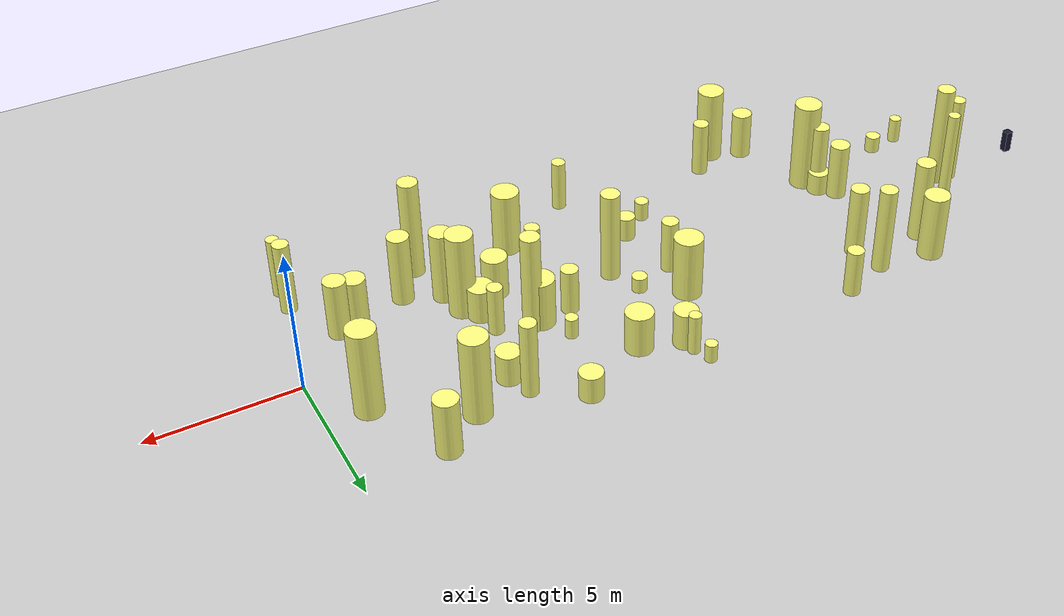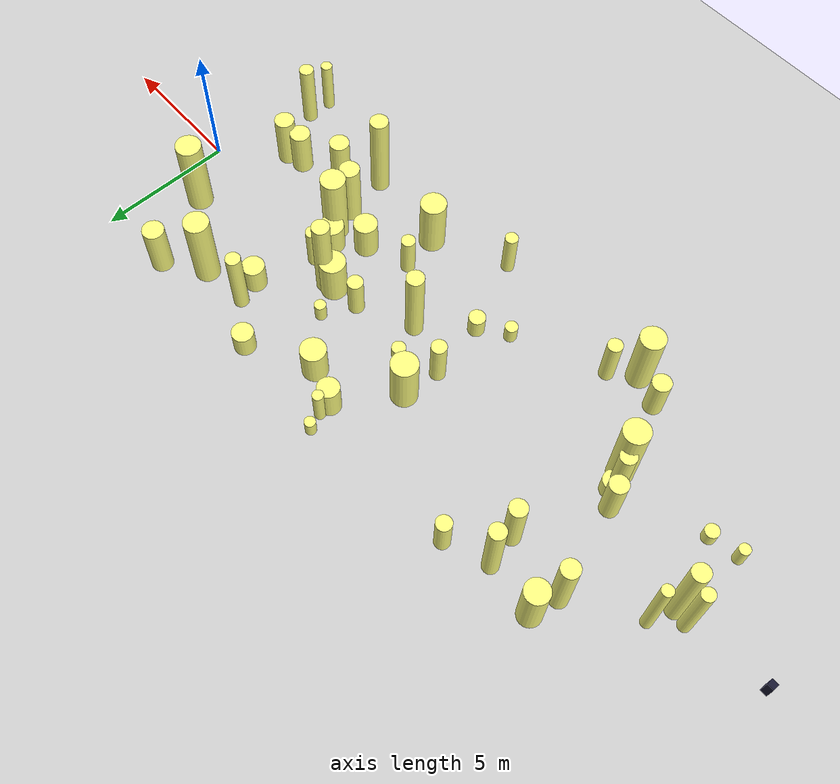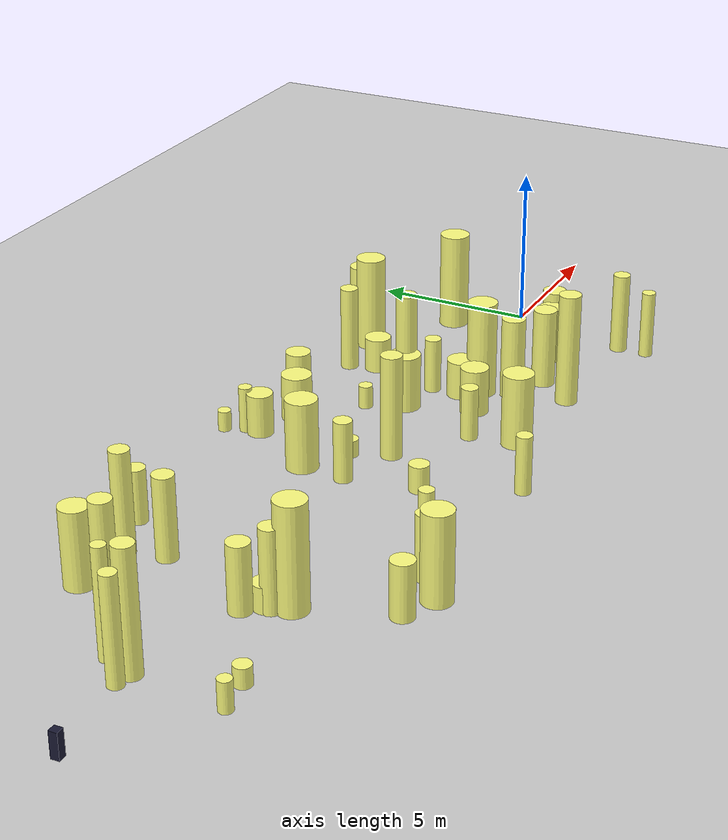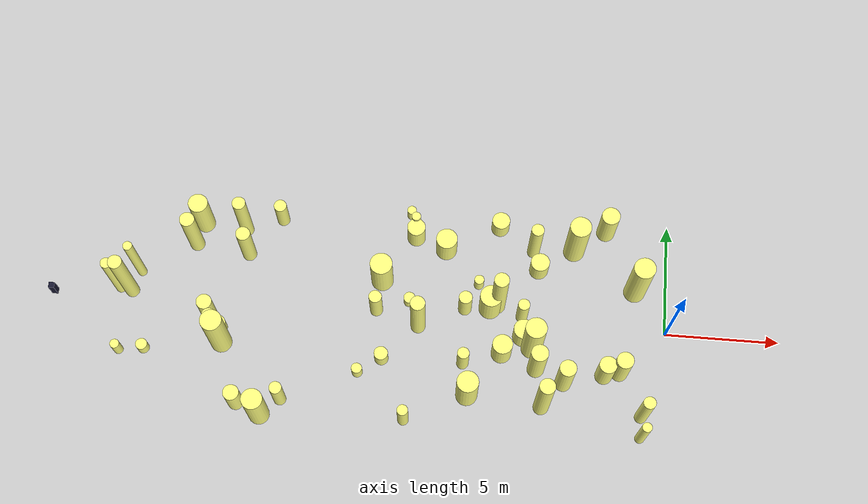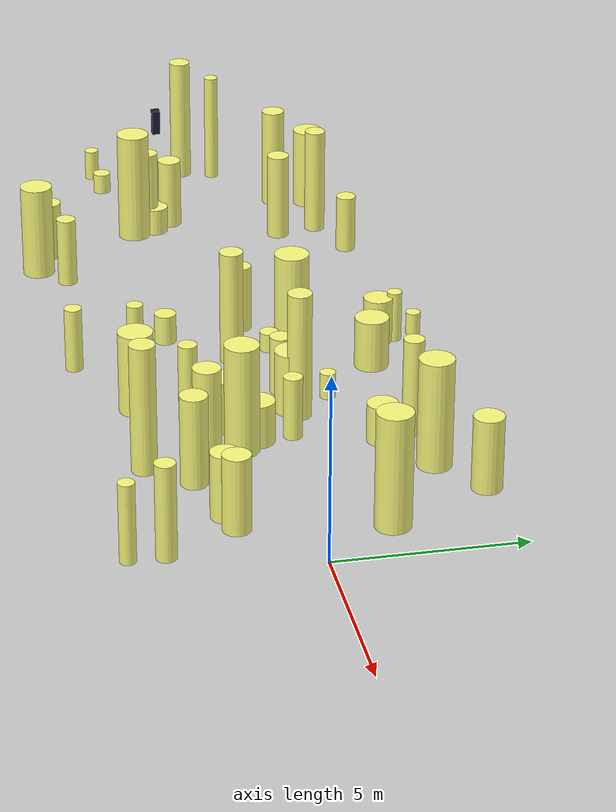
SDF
<sdf version="1.4">
 <world name="default">
  <include><uri>model://ground_plane</uri></include>
  <include><uri>model://sun</uri></include>
  <model name="forest">
   <static>true</static>
   <link name="cylinder0">
    <pose>-9.830720803390115 3.235554947666131 0.7182927848972427 0 0 0</pose>
    <visual name="visual">
     <geometry>
      <cylinder><radius>0.46576942682826955</radius><length>1.4365855697944854</length></cylinder>
     </geometry>
     <material>
      <ambient>0.6 0.6 0.6 1</ambient>
      <diffuse>1 1 0.5 1</diffuse>
      <specular>0 0 0</specular>
      <emissive>0 0 0 1</emissive>
     </material>
    </visual>
    <collision name="collision">
     <geometry>
      <cylinder><radius>0.46576942682826955</radius><length>1.4365855697944854</length></cylinder>
     </geometry>
     <max_contacts>0</max_contacts>
    </collision>
   </link>
   <link name="cylinder1">
    <pose>-13.301530226175817 -2.7167241906709974 0.34406534826698215 0 0 0</pose>
    <visual name="visual">
     <geometry>
      <cylinder><radius>0.23339209544105322</radius><length>0.6881306965339643</length></cylinder>
     </geometry>
     <material>
      <ambient>0.6 0.6 0.6 1</ambient>
      <diffuse>1 1 0.5 1</diffuse>
      <specular>0 0 0</specular>
      <emissive>0 0 0 1</emissive>
     </material>
    </visual>
    <collision name="collision">
     <geometry>
      <cylinder><radius>0.23339209544105322</radius><length>0.6881306965339643</length></cylinder>
     </geometry>
     <max_contacts>0</max_contacts>
    </collision>
   </link>
   <link name="cylinder3">
    <pose>-0.9511905243909986 -3.7937651143453155 1.3032404722122595 0 0 0</pose>
    <visual name="visual">
     <geometry>
      <cylinder><radius>0.26848415864217134</radius><length>2.606480944424519</length></cylinder>
     </geometry>
     <material>
      <ambient>0.6 0.6 0.6 1</ambient>
      <diffuse>1 1 0.5 1</diffuse>
      <specular>0 0 0</specular>
      <emissive>0 0 0 1</emissive>
     </material>
    </visual>
    <collision name="collision">
     <geometry>
      <cylinder><radius>0.26848415864217134</radius><length>2.606480944424519</length></cylinder>
     </geometry>
     <max_contacts>0</max_contacts>
    </collision>
   </link>
   <link name="cylinder7">
    <pose>-7.727615459679839 0.6372034440405798 0.875210409710826 0 0 0</pose>
    <visual name="visual">
     <geometry>
      <cylinder><radius>0.48508795567301455</radius><length>1.750420819421652</length></cylinder>
     </geometry>
     <material>
      <ambient>0.6 0.6 0.6 1</ambient>
      <diffuse>1 1 0.5 1</diffuse>
      <specular>0 0 0</specular>
      <emissive>0 0 0 1</emissive>
     </material>
    </visual>
    <collision name="collision">
     <geometry>
      <cylinder><radius>0.48508795567301455</radius><length>1.750420819421652</length></cylinder>
     </geometry>
     <max_contacts>0</max_contacts>
    </collision>
   </link>
   <link name="cylinder9">
    <pose>-17.257488566479207 4.127317122834544 0.8352382350578361 0 0 0</pose>
    <visual name="visual">
     <geometry>
      <cylinder><radius>0.2796860611333085</radius><length>1.6704764701156722</length></cylinder>
     </geometry>
     <material>
      <ambient>0.6 0.6 0.6 1</ambient>
      <diffuse>1 1 0.5 1</diffuse>
      <specular>0 0 0</specular>
      <emissive>0 0 0 1</emissive>
     </material>
    </visual>
    <collision name="collision">
     <geometry>
      <cylinder><radius>0.2796860611333085</radius><length>1.6704764701156722</length></cylinder>
     </geometry>
     <max_contacts>0</max_contacts>
    </collision>
   </link>
   <link name="cylinder11">
    <pose>-5.944216426440512 3.444837388084803 1.3497066958243504 0 0 0</pose>
    <visual name="visual">
     <geometry>
      <cylinder><radius>0.27424540906935424</radius><length>2.699413391648701</length></cylinder>
     </geometry>
     <material>
      <ambient>0.6 0.6 0.6 1</ambient>
      <diffuse>1 1 0.5 1</diffuse>
      <specular>0 0 0</specular>
      <emissive>0 0 0 1</emissive>
     </material>
    </visual>
    <collision name="collision">
     <geometry>
      <cylinder><radius>0.27424540906935424</radius><length>2.699413391648701</length></cylinder>
     </geometry>
     <max_contacts>0</max_contacts>
    </collision>
   </link>
   <link name="cylinder13">
    <pose>-12.561981277283774 1.5787413002267412 1.1028347483679917 0 0 0</pose>
    <visual name="visual">
     <geometry>
      <cylinder><radius>0.48482916464376824</radius><length>2.2056694967359833</length></cylinder>
     </geometry>
     <material>
      <ambient>0.6 0.6 0.6 1</ambient>
      <diffuse>1 1 0.5 1</diffuse>
      <specular>0 0 0</specular>
      <emissive>0 0 0 1</emissive>
     </material>
    </visual>
    <collision name="collision">
     <geometry>
      <cylinder><radius>0.48482916464376824</radius><length>2.2056694967359833</length></cylinder>
     </geometry>
     <max_contacts>0</max_contacts>
    </collision>
   </link>
   <link name="cylinder15">
    <pose>-5.663796459011827 2.5820999626042065 0.5426901355455794 0 0 0</pose>
    <visual name="visual">
     <geometry>
      <cylinder><radius>0.41271997819827655</radius><length>1.0853802710911589</length></cylinder>
     </geometry>
     <material>
      <ambient>0.6 0.6 0.6 1</ambient>
      <diffuse>1 1 0.5 1</diffuse>
      <specular>0 0 0</specular>
      <emissive>0 0 0 1</emissive>
     </material>
    </visual>
    <collision name="collision">
     <geometry>
      <cylinder><radius>0.41271997819827655</radius><length>1.0853802710911589</length></cylinder>
     </geometry>
     <max_contacts>0</max_contacts>
    </collision>
   </link>
   <link name="cylinder16">
    <pose>-18.83287300930011 3.522302612712915 1.558999867058374 0 0 0</pose>
    <visual name="visual">
     <geometry>
      <cylinder><radius>0.2926893200501962</radius><length>3.117999734116748</length></cylinder>
     </geometry>
     <material>
      <ambient>0.6 0.6 0.6 1</ambient>
      <diffuse>1 1 0.5 1</diffuse>
      <specular>0 0 0</specular>
      <emissive>0 0 0 1</emissive>
     </material>
    </visual>
    <collision name="collision">
     <geometry>
      <cylinder><radius>0.2926893200501962</radius><length>3.117999734116748</length></cylinder>
     </geometry>
     <max_contacts>0</max_contacts>
    </collision>
   </link>
   <link name="cylinder17">
    <pose>-0.964448442852671 -4.726974164393326 1.0846007019325463 0 0 0</pose>
    <visual name="visual">
     <geometry>
      <cylinder><radius>0.21282826584180448</radius><length>2.1692014038650926</length></cylinder>
     </geometry>
     <material>
      <ambient>0.6 0.6 0.6 1</ambient>
      <diffuse>1 1 0.5 1</diffuse>
      <specular>0 0 0</specular>
      <emissive>0 0 0 1</emissive>
     </material>
    </visual>
    <collision name="collision">
     <geometry>
      <cylinder><radius>0.21282826584180448</radius><length>2.1692014038650926</length></cylinder>
     </geometry>
     <max_contacts>0</max_contacts>
    </collision>
   </link>
   <link name="cylinder19">
    <pose>-7.485077178065264 4.46773874166276 0.47083643337854875 0 0 0</pose>
    <visual name="visual">
     <geometry>
      <cylinder><radius>0.3938477574909951</radius><length>0.9416728667570975</length></cylinder>
     </geometry>
     <material>
      <ambient>0.6 0.6 0.6 1</ambient>
      <diffuse>1 1 0.5 1</diffuse>
      <specular>0 0 0</specular>
      <emissive>0 0 0 1</emissive>
     </material>
    </visual>
    <collision name="collision">
     <geometry>
      <cylinder><radius>0.3938477574909951</radius><length>0.9416728667570975</length></cylinder>
     </geometry>
     <max_contacts>0</max_contacts>
    </collision>
   </link>
   <link name="cylinder22">
    <pose>-6.304854473788968 0.3614920475337824 0.8680897214315368 0 0 0</pose>
    <visual name="visual">
     <geometry>
      <cylinder><radius>0.2554054732506064</radius><length>1.7361794428630737</length></cylinder>
     </geometry>
     <material>
      <ambient>0.6 0.6 0.6 1</ambient>
      <diffuse>1 1 0.5 1</diffuse>
      <specular>0 0 0</specular>
      <emissive>0 0 0 1</emissive>
     </material>
    </visual>
    <collision name="collision">
     <geometry>
      <cylinder><radius>0.2554054732506064</radius><length>1.7361794428630737</length></cylinder>
     </geometry>
     <max_contacts>0</max_contacts>
    </collision>
   </link>
   <link name="cylinder23">
    <pose>-11.13874105460969 -4.690529326969451 0.9060957126560065 0 0 0</pose>
    <visual name="visual">
     <geometry>
      <cylinder><radius>0.23863124001657485</radius><length>1.812191425312013</length></cylinder>
     </geometry>
     <material>
      <ambient>0.6 0.6 0.6 1</ambient>
      <diffuse>1 1 0.5 1</diffuse>
      <specular>0 0 0</specular>
      <emissive>0 0 0 1</emissive>
     </material>
    </visual>
    <collision name="collision">
     <geometry>
      <cylinder><radius>0.23863124001657485</radius><length>1.812191425312013</length></cylinder>
     </geometry>
     <max_contacts>0</max_contacts>
    </collision>
   </link>
   <link name="cylinder24">
    <pose>-6.215196501369231 -0.5662569450970292 0.5940139332361044 0 0 0</pose>
    <visual name="visual">
     <geometry>
      <cylinder><radius>0.4460458054168145</radius><length>1.1880278664722088</length></cylinder>
     </geometry>
     <material>
      <ambient>0.6 0.6 0.6 1</ambient>
      <diffuse>1 1 0.5 1</diffuse>
      <specular>0 0 0</specular>
      <emissive>0 0 0 1</emissive>
     </material>
    </visual>
    <collision name="collision">
     <geometry>
      <cylinder><radius>0.4460458054168145</radius><length>1.1880278664722088</length></cylinder>
     </geometry>
     <max_contacts>0</max_contacts>
    </collision>
   </link>
   <link name="cylinder26">
    <pose>-23.807733474724664 -2.4915112711571306 0.45131721621917525 0 0 0</pose>
    <visual name="visual">
     <geometry>
      <cylinder><radius>0.2038216445307513</radius><length>0.9026344324383505</length></cylinder>
     </geometry>
     <material>
      <ambient>0.6 0.6 0.6 1</ambient>
      <diffuse>1 1 0.5 1</diffuse>
      <specular>0 0 0</specular>
      <emissive>0 0 0 1</emissive>
     </material>
    </visual>
    <collision name="collision">
     <geometry>
      <cylinder><radius>0.2038216445307513</radius><length>0.9026344324383505</length></cylinder>
     </geometry>
     <max_contacts>0</max_contacts>
    </collision>
   </link>
   <link name="cylinder30">
    <pose>-1.3838550974502368 1.8779981275210158 1.5812145388326357 0 0 0</pose>
    <visual name="visual">
     <geometry>
      <cylinder><radius>0.47093085014604186</radius><length>3.1624290776652715</length></cylinder>
     </geometry>
     <material>
      <ambient>0.6 0.6 0.6 1</ambient>
      <diffuse>1 1 0.5 1</diffuse>
      <specular>0 0 0</specular>
      <emissive>0 0 0 1</emissive>
     </material>
    </visual>
    <collision name="collision">
     <geometry>
      <cylinder><radius>0.47093085014604186</radius><length>3.1624290776652715</length></cylinder>
     </geometry>
     <max_contacts>0</max_contacts>
    </collision>
   </link>
   <link name="cylinder33">
    <pose>-8.49420739531984 -3.3857336237281856 1.1487312700447918 0 0 0</pose>
    <visual name="visual">
     <geometry>
      <cylinder><radius>0.4723207564353888</radius><length>2.2974625400895836</length></cylinder>
     </geometry>
     <material>
      <ambient>0.6 0.6 0.6 1</ambient>
      <diffuse>1 1 0.5 1</diffuse>
      <specular>0 0 0</specular>
      <emissive>0 0 0 1</emissive>
     </material>
    </visual>
    <collision name="collision">
     <geometry>
      <cylinder><radius>0.4723207564353888</radius><length>2.2974625400895836</length></cylinder>
     </geometry>
     <max_contacts>0</max_contacts>
    </collision>
   </link>
   <link name="cylinder34">
    <pose>-19.61475089470376 -1.3592354045587038 1.2410937346082427 0 0 0</pose>
    <visual name="visual">
     <geometry>
      <cylinder><radius>0.2944435240690829</radius><length>2.4821874692164854</length></cylinder>
     </geometry>
     <material>
      <ambient>0.6 0.6 0.6 1</ambient>
      <diffuse>1 1 0.5 1</diffuse>
      <specular>0 0 0</specular>
      <emissive>0 0 0 1</emissive>
     </material>
    </visual>
    <collision name="collision">
     <geometry>
      <cylinder><radius>0.2944435240690829</radius><length>2.4821874692164854</length></cylinder>
     </geometry>
     <max_contacts>0</max_contacts>
    </collision>
   </link>
   <link name="cylinder35">
    <pose>-5.2605845754147005 -3.674934649735201 1.7868303058974122 0 0 0</pose>
    <visual name="visual">
     <geometry>
      <cylinder><radius>0.3398801913396128</radius><length>3.5736606117948244</length></cylinder>
     </geometry>
     <material>
      <ambient>0.6 0.6 0.6 1</ambient>
      <diffuse>1 1 0.5 1</diffuse>
      <specular>0 0 0</specular>
      <emissive>0 0 0 1</emissive>
     </material>
    </visual>
    <collision name="collision">
     <geometry>
      <cylinder><radius>0.3398801913396128</radius><length>3.5736606117948244</length></cylinder>
     </geometry>
     <max_contacts>0</max_contacts>
    </collision>
   </link>
   <link name="cylinder37">
    <pose>-19.350280301945293 -1.8211270992761386 1.6157213406520552 0 0 0</pose>
    <visual name="visual">
     <geometry>
      <cylinder><radius>0.46232408937305763</radius><length>3.2314426813041104</length></cylinder>
     </geometry>
     <material>
      <ambient>0.6 0.6 0.6 1</ambient>
      <diffuse>1 1 0.5 1</diffuse>
      <specular>0 0 0</specular>
      <emissive>0 0 0 1</emissive>
     </material>
    </visual>
    <collision name="collision">
     <geometry>
      <cylinder><radius>0.46232408937305763</radius><length>3.2314426813041104</length></cylinder>
     </geometry>
     <max_contacts>0</max_contacts>
    </collision>
   </link>
   <link name="cylinder38">
    <pose>-20.73963934576656 3.6914156899435504 1.1835903976359519 0 0 0</pose>
    <visual name="visual">
     <geometry>
      <cylinder><radius>0.428591396780448</radius><length>2.3671807952719037</length></cylinder>
     </geometry>
     <material>
      <ambient>0.6 0.6 0.6 1</ambient>
      <diffuse>1 1 0.5 1</diffuse>
      <specular>0 0 0</specular>
      <emissive>0 0 0 1</emissive>
     </material>
    </visual>
    <collision name="collision">
     <geometry>
      <cylinder><radius>0.428591396780448</radius><length>2.3671807952719037</length></cylinder>
     </geometry>
     <max_contacts>0</max_contacts>
    </collision>
   </link>
   <link name="cylinder39">
    <pose>-1.9350343566588037 -1.8985625384711327 1.046354484008154 0 0 0</pose>
    <visual name="visual">
     <geometry>
      <cylinder><radius>0.3694459770511317</radius><length>2.092708968016308</length></cylinder>
     </geometry>
     <material>
      <ambient>0.6 0.6 0.6 1</ambient>
      <diffuse>1 1 0.5 1</diffuse>
      <specular>0 0 0</specular>
      <emissive>0 0 0 1</emissive>
     </material>
    </visual>
    <collision name="collision">
     <geometry>
      <cylinder><radius>0.3694459770511317</radius><length>2.092708968016308</length></cylinder>
     </geometry>
     <max_contacts>0</max_contacts>
    </collision>
   </link>
   <link name="cylinder41">
    <pose>-11.285041992487487 0.695047360578612 0.26740590351343896 0 0 0</pose>
    <visual name="visual">
     <geometry>
      <cylinder><radius>0.25663282416869626</radius><length>0.5348118070268779</length></cylinder>
     </geometry>
     <material>
      <ambient>0.6 0.6 0.6 1</ambient>
      <diffuse>1 1 0.5 1</diffuse>
      <specular>0 0 0</specular>
      <emissive>0 0 0 1</emissive>
     </material>
    </visual>
    <collision name="collision">
     <geometry>
      <cylinder><radius>0.25663282416869626</radius><length>0.5348118070268779</length></cylinder>
     </geometry>
     <max_contacts>0</max_contacts>
    </collision>
   </link>
   <link name="cylinder43">
    <pose>-4.13885723590392 3.5897968480393914 1.516773556248452 0 0 0</pose>
    <visual name="visual">
     <geometry>
      <cylinder><radius>0.4613242985159272</radius><length>3.033547112496904</length></cylinder>
     </geometry>
     <material>
      <ambient>0.6 0.6 0.6 1</ambient>
      <diffuse>1 1 0.5 1</diffuse>
      <specular>0 0 0</specular>
      <emissive>0 0 0 1</emissive>
     </material>
    </visual>
    <collision name="collision">
     <geometry>
      <cylinder><radius>0.4613242985159272</radius><length>3.033547112496904</length></cylinder>
     </geometry>
     <max_contacts>0</max_contacts>
    </collision>
   </link>
   <link name="cylinder47">
    <pose>-8.275534236177794 1.699405641100081 0.3616090841700658 0 0 0</pose>
    <visual name="visual">
     <geometry>
      <cylinder><radius>0.2134403789157707</radius><length>0.7232181683401316</length></cylinder>
     </geometry>
     <material>
      <ambient>0.6 0.6 0.6 1</ambient>
      <diffuse>1 1 0.5 1</diffuse>
      <specular>0 0 0</specular>
      <emissive>0 0 0 1</emissive>
     </material>
    </visual>
    <collision name="collision">
     <geometry>
      <cylinder><radius>0.2134403789157707</radius><length>0.7232181683401316</length></cylinder>
     </geometry>
     <max_contacts>0</max_contacts>
    </collision>
   </link>
   <link name="cylinder48">
    <pose>-7.11029083336016 -1.401633446989047 0.7380359977490331 0 0 0</pose>
    <visual name="visual">
     <geometry>
      <cylinder><radius>0.43815324421603563</radius><length>1.4760719954980661</length></cylinder>
     </geometry>
     <material>
      <ambient>0.6 0.6 0.6 1</ambient>
      <diffuse>1 1 0.5 1</diffuse>
      <specular>0 0 0</specular>
      <emissive>0 0 0 1</emissive>
     </material>
    </visual>
    <collision name="collision">
     <geometry>
      <cylinder><radius>0.43815324421603563</radius><length>1.4760719954980661</length></cylinder>
     </geometry>
     <max_contacts>0</max_contacts>
    </collision>
   </link>
   <link name="cylinder51">
    <pose>-5.57228291579494 -2.000016582609586 1.295378873262297 0 0 0</pose>
    <visual name="visual">
     <geometry>
      <cylinder><radius>0.37143090009585644</radius><length>2.590757746524594</length></cylinder>
     </geometry>
     <material>
      <ambient>0.6 0.6 0.6 1</ambient>
      <diffuse>1 1 0.5 1</diffuse>
      <specular>0 0 0</specular>
      <emissive>0 0 0 1</emissive>
     </material>
    </visual>
    <collision name="collision">
     <geometry>
      <cylinder><radius>0.37143090009585644</radius><length>2.590757746524594</length></cylinder>
     </geometry>
     <max_contacts>0</max_contacts>
    </collision>
   </link>
   <link name="cylinder54">
    <pose>-2.609762344475051 -2.0681859507242684 0.9063246766183525 0 0 0</pose>
    <visual name="visual">
     <geometry>
      <cylinder><radius>0.3823834046397785</radius><length>1.812649353236705</length></cylinder>
     </geometry>
     <material>
      <ambient>0.6 0.6 0.6 1</ambient>
      <diffuse>1 1 0.5 1</diffuse>
      <specular>0 0 0</specular>
      <emissive>0 0 0 1</emissive>
     </material>
    </visual>
    <collision name="collision">
     <geometry>
      <cylinder><radius>0.3823834046397785</radius><length>1.812649353236705</length></cylinder>
     </geometry>
     <max_contacts>0</max_contacts>
    </collision>
   </link>
   <link name="cylinder55">
    <pose>-19.543304295893282 -1.1678676818196432 0.39208461506435816 0 0 0</pose>
    <visual name="visual">
     <geometry>
      <cylinder><radius>0.3708464854241684</radius><length>0.7841692301287163</length></cylinder>
     </geometry>
     <material>
      <ambient>0.6 0.6 0.6 1</ambient>
      <diffuse>1 1 0.5 1</diffuse>
      <specular>0 0 0</specular>
      <emissive>0 0 0 1</emissive>
     </material>
    </visual>
    <collision name="collision">
     <geometry>
      <cylinder><radius>0.3708464854241684</radius><length>0.7841692301287163</length></cylinder>
     </geometry>
     <max_contacts>0</max_contacts>
    </collision>
   </link>
   <link name="cylinder57">
    <pose>-8.759417026525657 -1.9732849524218743 0.8262259612250582 0 0 0</pose>
    <visual name="visual">
     <geometry>
      <cylinder><radius>0.2588202132992456</radius><length>1.6524519224501164</length></cylinder>
     </geometry>
     <material>
      <ambient>0.6 0.6 0.6 1</ambient>
      <diffuse>1 1 0.5 1</diffuse>
      <specular>0 0 0</specular>
      <emissive>0 0 0 1</emissive>
     </material>
    </visual>
    <collision name="collision">
     <geometry>
      <cylinder><radius>0.2588202132992456</radius><length>1.6524519224501164</length></cylinder>
     </geometry>
     <max_contacts>0</max_contacts>
    </collision>
   </link>
   <link name="cylinder60">
    <pose>-17.342653087472797 -4.9122895973474865 1.3476827814587669 0 0 0</pose>
    <visual name="visual">
     <geometry>
      <cylinder><radius>0.4521448212507001</radius><length>2.6953655629175337</length></cylinder>
     </geometry>
     <material>
      <ambient>0.6 0.6 0.6 1</ambient>
      <diffuse>1 1 0.5 1</diffuse>
      <specular>0 0 0</specular>
      <emissive>0 0 0 1</emissive>
     </material>
    </visual>
    <collision name="collision">
     <geometry>
      <cylinder><radius>0.4521448212507001</radius><length>2.6953655629175337</length></cylinder>
     </geometry>
     <max_contacts>0</max_contacts>
    </collision>
   </link>
   <link name="cylinder61">
    <pose>-23.577444961265705 0.2621458541577226 1.8485565280610947 0 0 0</pose>
    <visual name="visual">
     <geometry>
      <cylinder><radius>0.3051406375201531</radius><length>3.6971130561221894</length></cylinder>
     </geometry>
     <material>
      <ambient>0.6 0.6 0.6 1</ambient>
      <diffuse>1 1 0.5 1</diffuse>
      <specular>0 0 0</specular>
      <emissive>0 0 0 1</emissive>
     </material>
    </visual>
    <collision name="collision">
     <geometry>
      <cylinder><radius>0.3051406375201531</radius><length>3.6971130561221894</length></cylinder>
     </geometry>
     <max_contacts>0</max_contacts>
    </collision>
   </link>
   <link name="cylinder62">
    <pose>-8.826320990802323 0.531762912612928 0.8134439615912514 0 0 0</pose>
    <visual name="visual">
     <geometry>
      <cylinder><radius>0.2915518344401328</radius><length>1.6268879231825029</length></cylinder>
     </geometry>
     <material>
      <ambient>0.6 0.6 0.6 1</ambient>
      <diffuse>1 1 0.5 1</diffuse>
      <specular>0 0 0</specular>
      <emissive>0 0 0 1</emissive>
     </material>
    </visual>
    <collision name="collision">
     <geometry>
      <cylinder><radius>0.2915518344401328</radius><length>1.6268879231825029</length></cylinder>
     </geometry>
     <max_contacts>0</max_contacts>
    </collision>
   </link>
   <link name="cylinder63">
    <pose>-18.407534300445672 -4.454870713783851 0.8426590079444775 0 0 0</pose>
    <visual name="visual">
     <geometry>
      <cylinder><radius>0.34403637925401553</radius><length>1.685318015888955</length></cylinder>
     </geometry>
     <material>
      <ambient>0.6 0.6 0.6 1</ambient>
      <diffuse>1 1 0.5 1</diffuse>
      <specular>0 0 0</specular>
      <emissive>0 0 0 1</emissive>
     </material>
    </visual>
    <collision name="collision">
     <geometry>
      <cylinder><radius>0.34403637925401553</radius><length>1.685318015888955</length></cylinder>
     </geometry>
     <max_contacts>0</max_contacts>
    </collision>
   </link>
   <link name="cylinder64">
    <pose>-10.823916715922222 -0.4256459204676357 1.622582883460864 0 0 0</pose>
    <visual name="visual">
     <geometry>
      <cylinder><radius>0.3208483038516348</radius><length>3.245165766921728</length></cylinder>
     </geometry>
     <material>
      <ambient>0.6 0.6 0.6 1</ambient>
      <diffuse>1 1 0.5 1</diffuse>
      <specular>0 0 0</specular>
      <emissive>0 0 0 1</emissive>
     </material>
    </visual>
    <collision name="collision">
     <geometry>
      <cylinder><radius>0.3208483038516348</radius><length>3.245165766921728</length></cylinder>
     </geometry>
     <max_contacts>0</max_contacts>
    </collision>
   </link>
   <link name="cylinder65">
    <pose>-24.09695397095366 0.3675770276255701 1.5807495257682016 0 0 0</pose>
    <visual name="visual">
     <geometry>
      <cylinder><radius>0.2343393515232873</radius><length>3.161499051536403</length></cylinder>
     </geometry>
     <material>
      <ambient>0.6 0.6 0.6 1</ambient>
      <diffuse>1 1 0.5 1</diffuse>
      <specular>0 0 0</specular>
      <emissive>0 0 0 1</emissive>
     </material>
    </visual>
    <collision name="collision">
     <geometry>
      <cylinder><radius>0.2343393515232873</radius><length>3.161499051536403</length></cylinder>
     </geometry>
     <max_contacts>0</max_contacts>
    </collision>
   </link>
   <link name="cylinder67">
    <pose>-12.30324426141109 -2.0166719760070198 0.42115456049298966 0 0 0</pose>
    <visual name="visual">
     <geometry>
      <cylinder><radius>0.3030197469345969</radius><length>0.8423091209859793</length></cylinder>
     </geometry>
     <material>
      <ambient>0.6 0.6 0.6 1</ambient>
      <diffuse>1 1 0.5 1</diffuse>
      <specular>0 0 0</specular>
      <emissive>0 0 0 1</emissive>
     </material>
    </visual>
    <collision name="collision">
     <geometry>
      <cylinder><radius>0.3030197469345969</radius><length>0.8423091209859793</length></cylinder>
     </geometry>
     <max_contacts>0</max_contacts>
    </collision>
   </link>
   <link name="cylinder69">
    <pose>-22.725816053458086 -2.328262787933786 0.2962925852637929 0 0 0</pose>
    <visual name="visual">
     <geometry>
      <cylinder><radius>0.25388861803278795</radius><length>0.5925851705275857</length></cylinder>
     </geometry>
     <material>
      <ambient>0.6 0.6 0.6 1</ambient>
      <diffuse>1 1 0.5 1</diffuse>
      <specular>0 0 0</specular>
      <emissive>0 0 0 1</emissive>
     </material>
    </visual>
    <collision name="collision">
     <geometry>
      <cylinder><radius>0.25388861803278795</radius><length>0.5925851705275857</length></cylinder>
     </geometry>
     <max_contacts>0</max_contacts>
    </collision>
   </link>
   <link name="cylinder71">
    <pose>-23.269360718482623 1.1760826846257952 1.6230776126654622 0 0 0</pose>
    <visual name="visual">
     <geometry>
      <cylinder><radius>0.20230512859210303</radius><length>3.2461552253309245</length></cylinder>
     </geometry>
     <material>
      <ambient>0.6 0.6 0.6 1</ambient>
      <diffuse>1 1 0.5 1</diffuse>
      <specular>0 0 0</specular>
      <emissive>0 0 0 1</emissive>
     </material>
    </visual>
    <collision name="collision">
     <geometry>
      <cylinder><radius>0.20230512859210303</radius><length>3.2461552253309245</length></cylinder>
     </geometry>
     <max_contacts>0</max_contacts>
    </collision>
   </link>
   <link name="cylinder73">
    <pose>-2.7532065192994786 4.600776660755594 1.024877546775416 0 0 0</pose>
    <visual name="visual">
     <geometry>
      <cylinder><radius>0.4010774263567438</radius><length>2.049755093550832</length></cylinder>
     </geometry>
     <material>
      <ambient>0.6 0.6 0.6 1</ambient>
      <diffuse>1 1 0.5 1</diffuse>
      <specular>0 0 0</specular>
      <emissive>0 0 0 1</emissive>
     </material>
    </visual>
    <collision name="collision">
     <geometry>
      <cylinder><radius>0.4010774263567438</radius><length>2.049755093550832</length></cylinder>
     </geometry>
     <max_contacts>0</max_contacts>
    </collision>
   </link>
   <link name="cylinder80">
    <pose>-19.973980227798492 -0.6584905121079752 1.0225893299149633 0 0 0</pose>
    <visual name="visual">
     <geometry>
      <cylinder><radius>0.33455178442175404</radius><length>2.0451786598299266</length></cylinder>
     </geometry>
     <material>
      <ambient>0.6 0.6 0.6 1</ambient>
      <diffuse>1 1 0.5 1</diffuse>
      <specular>0 0 0</specular>
      <emissive>0 0 0 1</emissive>
     </material>
    </visual>
    <collision name="collision">
     <geometry>
      <cylinder><radius>0.33455178442175404</radius><length>2.0451786598299266</length></cylinder>
     </geometry>
     <max_contacts>0</max_contacts>
    </collision>
   </link>
   <link name="cylinder82">
    <pose>-18.593076354619193 2.369918845674704 1.2677420297540556 0 0 0</pose>
    <visual name="visual">
     <geometry>
      <cylinder><radius>0.3137411709943509</radius><length>2.535484059508111</length></cylinder>
     </geometry>
     <material>
      <ambient>0.6 0.6 0.6 1</ambient>
      <diffuse>1 1 0.5 1</diffuse>
      <specular>0 0 0</specular>
      <emissive>0 0 0 1</emissive>
     </material>
    </visual>
    <collision name="collision">
     <geometry>
      <cylinder><radius>0.3137411709943509</radius><length>2.535484059508111</length></cylinder>
     </geometry>
     <max_contacts>0</max_contacts>
    </collision>
   </link>
   <link name="cylinder83">
    <pose>-20.986043387137858 2.6784879955678633 1.4760230587782588 0 0 0</pose>
    <visual name="visual">
     <geometry>
      <cylinder><radius>0.3251406195083504</radius><length>2.9520461175565176</length></cylinder>
     </geometry>
     <material>
      <ambient>0.6 0.6 0.6 1</ambient>
      <diffuse>1 1 0.5 1</diffuse>
      <specular>0 0 0</specular>
      <emissive>0 0 0 1</emissive>
     </material>
    </visual>
    <collision name="collision">
     <geometry>
      <cylinder><radius>0.3251406195083504</radius><length>2.9520461175565176</length></cylinder>
     </geometry>
     <max_contacts>0</max_contacts>
    </collision>
   </link>
   <link name="cylinder84">
    <pose>-4.359681322885518 -2.540528015823834 1.250229716451356 0 0 0</pose>
    <visual name="visual">
     <geometry>
      <cylinder><radius>0.3644515615623049</radius><length>2.500459432902712</length></cylinder>
     </geometry>
     <material>
      <ambient>0.6 0.6 0.6 1</ambient>
      <diffuse>1 1 0.5 1</diffuse>
      <specular>0 0 0</specular>
      <emissive>0 0 0 1</emissive>
     </material>
    </visual>
    <collision name="collision">
     <geometry>
      <cylinder><radius>0.3644515615623049</radius><length>2.500459432902712</length></cylinder>
     </geometry>
     <max_contacts>0</max_contacts>
    </collision>
   </link>
   <link name="cylinder85">
    <pose>-5.806668661352759 -1.060261450059019 1.5189288836113395 0 0 0</pose>
    <visual name="visual">
     <geometry>
      <cylinder><radius>0.4575991703376411</radius><length>3.037857767222679</length></cylinder>
     </geometry>
     <material>
      <ambient>0.6 0.6 0.6 1</ambient>
      <diffuse>1 1 0.5 1</diffuse>
      <specular>0 0 0</specular>
      <emissive>0 0 0 1</emissive>
     </material>
    </visual>
    <collision name="collision">
     <geometry>
      <cylinder><radius>0.4575991703376411</radius><length>3.037857767222679</length></cylinder>
     </geometry>
     <max_contacts>0</max_contacts>
    </collision>
   </link>
   <link name="cylinder86">
    <pose>-11.496085019506863 4.787135669254798 0.32065506211934947 0 0 0</pose>
    <visual name="visual">
     <geometry>
      <cylinder><radius>0.20119585745120167</radius><length>0.6413101242386989</length></cylinder>
     </geometry>
     <material>
      <ambient>0.6 0.6 0.6 1</ambient>
      <diffuse>1 1 0.5 1</diffuse>
      <specular>0 0 0</specular>
      <emissive>0 0 0 1</emissive>
     </material>
    </visual>
    <collision name="collision">
     <geometry>
      <cylinder><radius>0.20119585745120167</radius><length>0.6413101242386989</length></cylinder>
     </geometry>
     <max_contacts>0</max_contacts>
    </collision>
   </link>
   <link name="cylinder87">
    <pose>-11.210859072847413 3.723472716950564 0.6605438778830088 0 0 0</pose>
    <visual name="visual">
     <geometry>
      <cylinder><radius>0.4002298538679401</radius><length>1.3210877557660177</length></cylinder>
     </geometry>
     <material>
      <ambient>0.6 0.6 0.6 1</ambient>
      <diffuse>1 1 0.5 1</diffuse>
      <specular>0 0 0</specular>
      <emissive>0 0 0 1</emissive>
     </material>
    </visual>
    <collision name="collision">
     <geometry>
      <cylinder><radius>0.4002298538679401</radius><length>1.3210877557660177</length></cylinder>
     </geometry>
     <max_contacts>0</max_contacts>
    </collision>
   </link>
   <link name="cylinder89">
    <pose>-12.706528498124896 0.1800221408013769 0.9476795896526564 0 0 0</pose>
    <visual name="visual">
     <geometry>
      <cylinder><radius>0.28021361148710816</radius><length>1.8953591793053128</length></cylinder>
     </geometry>
     <material>
      <ambient>0.6 0.6 0.6 1</ambient>
      <diffuse>1 1 0.5 1</diffuse>
      <specular>0 0 0</specular>
      <emissive>0 0 0 1</emissive>
     </material>
    </visual>
    <collision name="collision">
     <geometry>
      <cylinder><radius>0.28021361148710816</radius><length>1.8953591793053128</length></cylinder>
     </geometry>
     <max_contacts>0</max_contacts>
    </collision>
   </link>
   <link name="cylinder92">
    <pose>-16.521352474322605 -4.179999480671669 0.9893115225394631 0 0 0</pose>
    <visual name="visual">
     <geometry>
      <cylinder><radius>0.2702886184107137</radius><length>1.9786230450789262</length></cylinder>
     </geometry>
     <material>
      <ambient>0.6 0.6 0.6 1</ambient>
      <diffuse>1 1 0.5 1</diffuse>
      <specular>0 0 0</specular>
      <emissive>0 0 0 1</emissive>
     </material>
    </visual>
    <collision name="collision">
     <geometry>
      <cylinder><radius>0.2702886184107137</radius><length>1.9786230450789262</length></cylinder>
     </geometry>
     <max_contacts>0</max_contacts>
    </collision>
   </link>
   <link name="cylinder95">
    <pose>-11.250054116421243 4.190830062215291 0.7157103950308232 0 0 0</pose>
    <visual name="visual">
     <geometry><cylinder><radius>0.20212768892729</radius><length>1.4314207900616465</length></cylinder></geometry>
     <material>
      <ambient>0.6 0.6 0.6 1</ambient>
      <diffuse>1 1 0.5 1</diffuse>
      <specular>0 0 0</specular>
      <emissive>0 0 0 1</emissive>
     </material>
    </visual>
    <collision name="collision">
     <geometry><cylinder><radius>0.20212768892729</radius><length>1.4314207900616465</length></cylinder></geometry>
     <max_contacts>0</max_contacts>
    </collision>
   </link>
   <link name="cylinder96">
    <pose>-7.383590740855357 0.7544826941113678 1.7779204730570668 0 0 0</pose>
    <visual name="visual">
     <geometry>
      <cylinder><radius>0.32173282254733904</radius><length>3.5558409461141336</length></cylinder>
     </geometry>
     <material>
      <ambient>0.6 0.6 0.6 1</ambient>
      <diffuse>1 1 0.5 1</diffuse>
      <specular>0 0 0</specular>
      <emissive>0 0 0 1</emissive>
     </material>
    </visual>
    <collision name="collision">
     <geometry>
      <cylinder><radius>0.32173282254733904</radius><length>3.5558409461141336</length></cylinder>
     </geometry>
     <max_contacts>0</max_contacts>
    </collision>
   </link>
   <link name="cube3">
    <pose>-27.0 0.0 0.25 0 0 0</pose>
    <visual name="visual">
     <geometry><box><size>0.25 0.25 1.0</size></box></geometry>
     <material>
      <ambient>0.1 0.1 0.1 1</ambient>
      <diffuse>0.1 0.1 0.2 1</diffuse>
      <specular>0 0 0</specular>
      <emissive>0 0 0 1</emissive>
     </material>
    </visual>
    <collision name="collision">
     <geometry><box><size>0.25 0.25 1.0</size></box></geometry>
     <max_contacts>0</max_contacts>
    </collision>
   </link>
  </model>
 </world>
</sdf>
